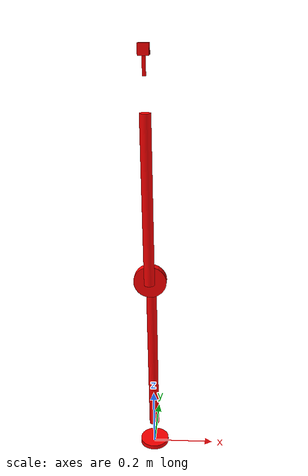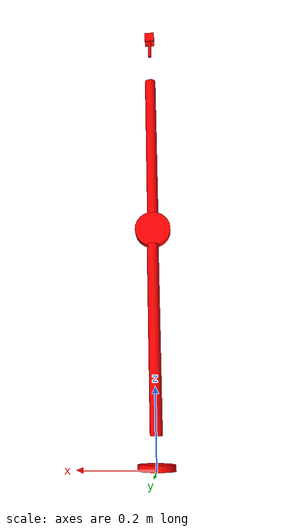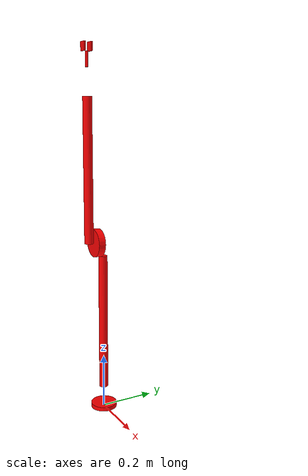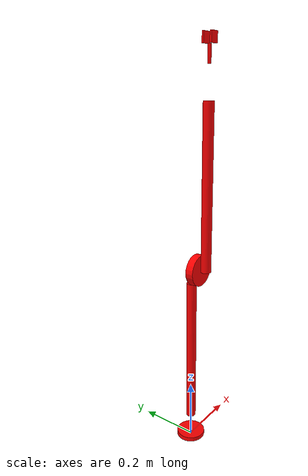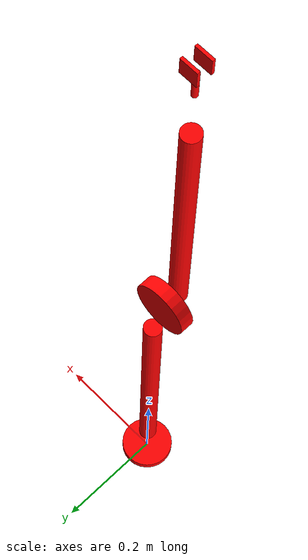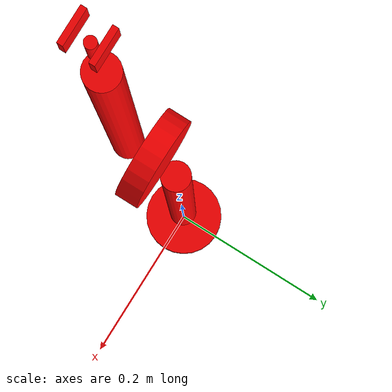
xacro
<?xml version="1.0"?>
<robot name="phoenix" xmlns:xacro="http://www.ros.org/wiki/xacro">
    <xacro:include filename="phoenix_properties.xacro"/>

    <link name="base_link"/>

    <link name="swivel_link">
        <inertial>
            <origin xyz="0.0 0.0 0.0" rpy="0.0 0.0 0.0"/>
            <mass value="0.0"/>
            <inertia ixx="0.0" ixy="0.0" ixz="0.0" iyy="0.0" iyz="0.0" izz="0.0"/>
        </inertial>
        <visual>
            <origin xyz="0.0 0.0 ${-swivel_l/2}" rpy="0.0 0.0 0.0"/>
                <geometry>
                    <cylinder radius="${swivel_r}" length="${swivel_l}"/>
                </geometry>
            <material name="">
                <color rgba="1.0 0.0 0.0 1.0"/>
            </material>
        </visual>
        <collision>
            <origin xyz="0.0 0.0 ${-swivel_l/2}" rpy="0.0 0.0 0.0"/>
                <geometry>
                    <cylinder radius="${swivel_r}" length="${swivel_l}"/>
                </geometry>
        </collision>
    </link>

    <link name="upper_arm_link">
        <inertial>
            <origin xyz="0.0 0.0 0.0" rpy="0.0 0.0 0.0"/>
            <mass value="0.0"/>
            <inertia ixx="0.0" ixy="0.0" ixz="0.0" iyy="0.0" iyz="0.0" izz="0.0"/>
        </inertial>
        <visual>
            <origin xyz="0.0 0.0 ${upper_arm_l/2 + 0.028}" rpy="0.0 0.0 0.0"/>
            <geometry>
                <cylinder radius="${upper_arm_r}" length="${upper_arm_l}"/>
            </geometry>
            <material name="">
                <color rgba="1.0 0.0 0.0 1.0"/>
            </material>
        </visual>
        <collision>
           <origin xyz="0.0 0.0 0.0" rpy="0.0 0.0 0.0"/>
            <geometry>
                <cylinder radius="${upper_arm_r}" length="${upper_arm_l}"/>
            </geometry>
        </collision>
    </link>

    <link name="gearbox_link">
        <inertial>
            <origin xyz="0.0 0.0 0.0" rpy="${pi/2} 0.0 0.0"/>
            <mass value="0.0"/>
            <inertia ixx="0.0" ixy="0.0" ixz="0.0" iyy="0.0" iyz="0.0" izz="0.0"/>
        </inertial>
        <visual>
            <origin xyz="0.0 0.0 0.0" rpy="${pi/2} 0.0 0.0"/>
            <geometry>
                <cylinder radius="${gearbox_r}" length="${gearbox_l}"/>
            </geometry>
            <material name="">
                <color rgba="1.0 0.0 0.0 1.0"/>
            </material>
        </visual>
        <collision>
            <origin xyz="0.0 0.0 0.0" rpy="${pi/2} 0.0 0.0"/>
            <geometry>
                <cylinder radius="${gearbox_r}" length="${gearbox_l}"/>
            </geometry>
        </collision>
    </link>

    <link name="lower_arm_link">
        <inertial>
            <origin xyz="0.0 0.0 0.0" rpy="0.0 0.0 0.0"/>
            <mass value="0.0"/>
            <inertia ixx="0.0" ixy="0.0" ixz="0.0" iyy="0.0" iyz="0.0" izz="0.0"/>
        </inertial>
        <visual>
            <origin xyz="0.0 0.0 ${lower_arm_l / 2}" rpy="0.0 0.0 0.0"/>
            <geometry>
                <cylinder radius="${lower_arm_r}" length="${lower_arm_l}"/>
            </geometry>
            <material name="">
                <color rgba="1.0 0.0 0.0 1.0"/>
            </material>
        </visual>
        <collision>
            <origin xyz="0.0 0.0 ${lower_arm_l / 2}" rpy="0.0 0.0 0.0"/>
            <geometry>
                <cylinder radius="${lower_arm_r}" length="${lower_arm_l}"/>
            </geometry>
        </collision>
    </link>

    <link name="wrist_link">
        <inertial>
            <origin xyz="0.0 0.0 0.0" rpy="0.0 0.0 0.0"/>
            <mass value="0.0"/>
            <inertia ixx="0.0" ixy="0.0" ixz="0.0" iyy="0.0" iyz="0.0" izz="0.0"/>
        </inertial>
        <visual>
            <origin xyz="0.0 0.0 ${wrist_l / 2}" rpy="0.0 0.0 0.0"/>
            <geometry>
                <cylinder radius="${wrist_r}" length="${wrist_l}"/>
            </geometry>
            <material name="">
                <color rgba="1.0 0.0 0.0 1.0"/>
                <texture filename=""/>
            </material>
        </visual>
        <collision>
            <origin xyz="0.0 0.0 ${wrist_l / 2}" rpy="0.0 0.0 0.0"/>
            <geometry>
                <cylinder radius="${wrist_r}" length="${wrist_l}"/>
            </geometry>
        </collision>
    </link>

    <link name="wrist_rotation_link"/>

    <link name="left_finger">
        <inertial>
            <origin xyz="0.0 0.0 0.0" rpy="0.0 0.0 0.0"/>
            <mass value="0.0"/>
            <inertia ixx="0.0" ixy="0.0" ixz="0.0" iyy="0.0" iyz="0.0" izz="0.0"/>
        </inertial>
        <visual>
            <origin xyz="0.0 ${-finger_l/2} ${finger_h / 2}" rpy="0.0 0.0 0.0"/>
            <geometry>
                <box size="${finger_w} ${finger_l} ${finger_h}"/>
            </geometry>
            <material name="">
                <color rgba="1.0 0.0 0.0 1.0"/>
            </material>
        </visual>
        <collision>
            <origin xyz="0.0 ${-finger_l/2} ${finger_h / 2}" rpy="0.0 0.0 0.0"/>
            <geometry>
                <box size="${finger_w} ${finger_l} ${finger_h}"/>
            </geometry>
        </collision>
    </link>

     <link name="right_finger">
        <inertial>
            <origin xyz="0.0 0.0 0.0" rpy="0.0 0.0 0.0"/>
            <mass value="0.0"/>
            <inertia ixx="0.0" ixy="0.0" ixz="0.0" iyy="0.0" iyz="0.0" izz="0.0"/>
        </inertial>
        <visual>
            <origin xyz="0.0 ${finger_l/2} ${finger_h / 2}" rpy="0.0 0.0 0.0"/>
            <geometry>
                <box size="${finger_w} ${finger_l} ${finger_h}"/>
            </geometry>
            <material name="">
                <color rgba="1.0 0.0 0.0 1.0"/>
            </material>
        </visual>
        <collision>
            <origin xyz="0.0 ${finger_l/2} ${finger_h / 2}" rpy="0.0 0.0 0.0"/>
            <geometry>
                <box size="${finger_w} ${finger_l} ${finger_h}"/>
            </geometry>
        </collision>
    </link>

    <joint name="base_swivel_joint" type="revolute">
        <origin xyz="0.0 0.0 ${swivel_l}" rpy="0.0 0.0 0.0"/>
        <parent link="base_link"/>
        <child link="swivel_link"/>
        <axis xyz="0.0 0.0 1.0"/>
        <limit lower="${-pi}" upper="${pi}" effort="100.0" velocity="100.0"/>
    </joint>

    <joint name="swivel_upper_arm_joint" type="revolute">
        <origin xyz="0.0 0.0 ${0.0381}" rpy="0.0 0.0 0.0"/>
        <parent link="swivel_link"/>
        <child link="upper_arm_link"/>
        <axis xyz="0.0 1.0 0.0"/>
        <limit lower="${-pi/2}" upper="${pi/2}" effort="100.0" velocity="100.0"/>
    </joint>

    <joint name="upper_arm_gearbox_joint" type="fixed">
        <origin xyz="0.0 ${-gearbox_l} ${0.028 + upper_arm_l + gearbox_r}" rpy="0.0 0.0 0.0"/>
        <parent link="upper_arm_link"/>
        <child link="gearbox_link"/>
    </joint>

    <joint name="gearbox_lower_arm_joint" type="revolute">
        <origin xyz="0.0 ${-lower_arm_r - gearbox_l / 2} 0.0" rpy="0.0 0.0 0.0"/>
        <parent link="gearbox_link"/>
        <child link="lower_arm_link"/>
        <axis xyz="0.0 1.0 0.0"/>
        <limit lower="${-pi}" upper="${pi}" effort="100.0" velocity="100.0"/>
    </joint>

    <joint name="lower_arm_wrist_joint" type="revolute">
        <origin xyz="0.0 0.0 ${lower_arm_l + 0.0927471}" rpy="0.0 0.0 0.0"/>
        <parent link="lower_arm_link"/>
        <child link="wrist_link"/>
        <axis xyz="0.0 1.0 0.0"/>
        <limit lower="${-pi}" upper="${pi}" effort="100.0" velocity="100.0"/>
    </joint>

    <joint name="wrist_wrist_rotation_joint" type="revolute">
        <origin xyz="0.0 0.0 ${wrist_l}" rpy="0.0 0.0 0.0"/>
        <parent link="wrist_link"/>
        <child link="wrist_rotation_link"/>
        <axis xyz="0.0 0.0 1.0"/>
        <limit lower="-${pi}" upper="${pi}" effort="100.0" velocity="100.0"/>
    </joint>

    <joint name="wrist_rotation_left_finger_joint" type="revolute">
        <origin xyz="0.0 ${-finger_l * 2} 0.0" rpy="0.0 0.0 0.0"/>
        <parent link="wrist_rotation_link"/>
        <child link="left_finger"/>
        <axis xyz="1.0 0.0 0.0"/>
        <limit lower="${-pi/2}" upper="${pi/2}" effort="100.0" velocity="100.0"/>
    </joint>

     <joint name="wrist_rotation_right_finger_joint" type="revolute">
        <origin xyz="0.0 ${finger_l * 2} 0.0" rpy="0.0 0.0 0.0"/>
        <parent link="wrist_rotation_link"/>
        <child link="right_finger"/>
        <axis xyz="1.0 0.0 0.0"/>
        <mimic joint="wrist_rotation_left_finger_joint" multiplier="${-1}"/>
        <limit lower="${-pi/2}" upper="${pi/2}" effort="100.0" velocity="100.0"/>
    </joint>

</robot>

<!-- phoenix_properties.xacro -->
<robot xmlns:xacro="http://www.ros.org/wiki/xacro">

    <xacro:property name="swivel_r" value="0.0475"/>
    <xacro:property name="swivel_l" value="0.015"/>

    <xacro:property name="upper_arm_r" value="0.016"/>
    <xacro:property name="upper_arm_l" value="0.5"/>

    <xacro:property name="gearbox_r" value="0.05"/>
    <xacro:property name="gearbox_l" value="0.025"/>

    <xacro:property name="lower_arm_r" value="0.016"/>
    <xacro:property name="lower_arm_l" value="0.5"/>

    <xacro:property name="wrist_r" value="0.005"/>
    <xacro:property name="wrist_l" value="0.05"/>

    <xacro:property name="finger_l" value="0.005"/>
    <xacro:property name="finger_w" value="0.03"/>
    <xacro:property name="finger_h" value="0.03"/>

</robot>
